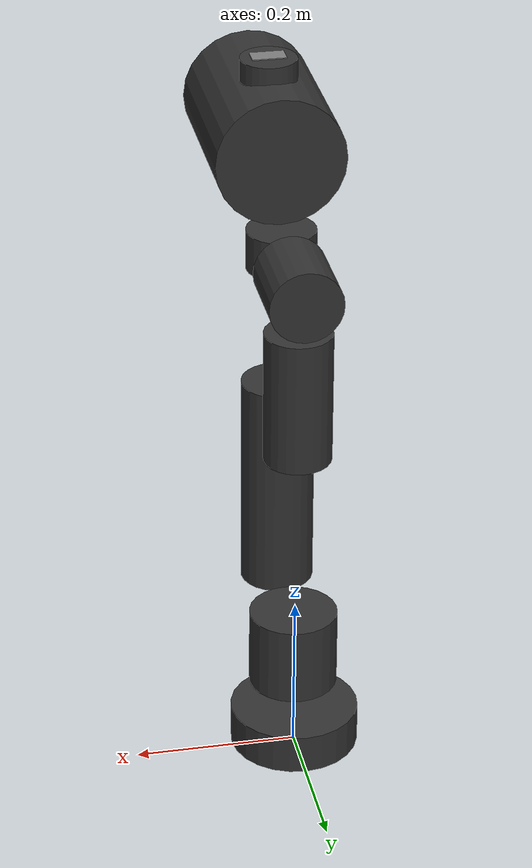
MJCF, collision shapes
<mujoco model="omy_f3m">
  <compiler angle="radian" meshdir="../../"/>
  <option cone="elliptic" impratio="10"/>
  <default>
    <default class="YM080-230-A099-RH">
      <position kp="2800" forcerange="-61.4 61.4" dampratio="1.6"/>
    </default>
    <default class="YM070-210-A099-RH">
      <position kp="1500" forcerange="-31.7 31.7" dampratio="2.1"/>
    </default>
    <default class="RH-P12-RN">
      <!-- Approximate hinge torque at the configured current limit. -->
      <position kp="50" forcerange="-3 3" dampratio="1.5"/>
    </default>
  </default>
  <asset>
    <mesh name="base_unit" content_type="model/stl" file="meshes/omy_f3m/base_unit.stl" scale="0.001 0.001 0.001"/>
    <mesh name="link1" content_type="model/stl" file="meshes/omy_f3m/link1.stl" scale="0.001 0.001 0.001"/>
    <mesh name="link2" content_type="model/stl" file="meshes/omy_f3m/link2.stl" scale="0.001 0.001 0.001"/>
    <mesh name="link3" content_type="model/stl" file="meshes/omy_f3m/link3.stl" scale="0.001 0.001 0.001"/>
    <mesh name="link4" content_type="model/stl" file="meshes/omy_f3m/link4.stl" scale="0.001 0.001 0.001"/>
    <mesh name="link5" content_type="model/stl" file="meshes/omy_f3m/link5.stl" scale="0.001 0.001 0.001"/>
    <mesh name="link6" content_type="model/stl" file="meshes/omy_f3m/link6.stl" scale="0.001 0.001 0.001"/>
    <mesh name="flange" content_type="model/stl" file="meshes/omy_f3m/flange.stl" scale="0.001 0.001 0.001"/>
    <mesh name="base" content_type="model/stl" file="meshes/rh_p12_rn_a/base.stl" scale="0.001 0.001 0.001"/>
    <mesh name="r1" content_type="model/stl" file="meshes/rh_p12_rn_a/r1.stl" scale="0.001 0.001 0.001"/>
    <mesh name="r2" content_type="model/stl" file="meshes/rh_p12_rn_a/r2.stl" scale="0.001 0.001 0.001"/>
    <mesh name="l1" content_type="model/stl" file="meshes/rh_p12_rn_a/l1.stl" scale="0.001 0.001 0.001"/>
    <mesh name="l2" content_type="model/stl" file="meshes/rh_p12_rn_a/l2.stl" scale="0.001 0.001 0.001"/>
  </asset>
  <worldbody>
    <body name="link0">
      <inertial pos="-0.00402158 0.0013084 0.0550735" quat="0.0485506 0.674996 -0.0441829 0.734895" mass="1.52875"
        diaginertia="0.00642077 0.00497955 0.00462403"/>
      <geom type="mesh" contype="0" conaffinity="0" group="2" density="0" rgba="0.2 0.2 0.2 1" mesh="base_unit"/>
      <geom size="0.08 0.025" pos="0 0 0.03" type="cylinder" rgba="0.2 0.2 0.2 1" group="3" density="0"/>
      <body name="link1" pos="0 0 0.1715">
        <inertial pos="-0.000110636 -0.00547113 -0.0158977" quat="0.98558 0.168758 -0.00294757 0.0120358" mass="2.06488"
          diaginertia="0.00303337 0.00279081 0.00221937"/>
        <joint name="joint1" pos="0 0 0" axis="0 0 1" range="-6.28319 6.28319" actuatorfrcrange="-1000 1000"
          damping="17" armature="0.3" frictionloss="5"/>
        <geom type="mesh" contype="0" conaffinity="0" group="2" density="0" rgba="0.2 0.2 0.2 1" mesh="link1"/>
        <geom size="0.055 0.05" pos="0 -0.01 -0.035" type="cylinder" rgba="0.2 0.2 0.2 1" group="3" density="0"/>
        <body name="link2" pos="0 -0.1215 0">
          <inertial pos="1.14054e-05 0.0161842 0.103606" quat="0.999988 -0.00477885 -0.000609836 0.00067321"
            mass="3.67954" diaginertia="0.051732 0.0503576 0.00449718"/>
          <joint name="joint2" pos="0 0 0" axis="0 1 0" range="-6.28319 6.28319" actuatorfrcrange="-1000 1000"
            damping="17" armature="0.3" frictionloss="5"/>
          <geom type="mesh" contype="0" conaffinity="0" group="2" density="0" rgba="0.2 0.2 0.2 1" mesh="link2"/>
          <geom size="0.046 0.14" pos="-0.005 -0.02 0.13" type="cylinder" rgba="0.2 0.2 0.2 1" group="3" density="0"/>
          <body name="link3" pos="0 0 0.247">
            <inertial pos="7.81487e-05 0.107185 0.141173" quat="0.999987 0.00500823 0.000469041 -0.00072733"
              mass="2.38659" diaginertia="0.0226944 0.021922 0.00277422"/>
            <joint name="joint3" pos="0 0 0" axis="0 1 0" range="-6.28319 6.28319" actuatorfrcrange="-1000 1000"
              damping="5" armature="0.1" frictionloss="3"/>
            <geom type="mesh" contype="0" conaffinity="0" group="2" density="0" rgba="0.2 0.2 0.2 1" mesh="link3"/>
            <geom size="0.042 0.085" pos="0 0.125 0.08" type="cylinder" rgba="0.2 0.2 0.2 1" group="3" density="0"/>
            <body name="link4" pos="0 0.1215 0.2195">
              <inertial pos="-0.000133183 -0.107467 0.0190907" quat="0.983636 0.179196 0.00338061 -0.0183488"
                mass="1.40023" diaginertia="0.00175475 0.00162284 0.00115817"/>
              <joint name="joint4" pos="0 0 0" axis="0 1 0" range="-6.28319 6.28319" actuatorfrcrange="-1000 1000"
                damping="5" armature="0.1" frictionloss="3"/>
              <geom type="mesh" contype="0" conaffinity="0" group="2" density="0" rgba="0.2 0.2 0.2 1" mesh="link4"/>
              <geom size="0.045 0.05" quat="0.707388 0.706825 0 0" type="cylinder" rgba="0.2 0.2 0.2 1" group="3"
                density="0"/>
              <body name="link5" pos="0 -0.113 0">
                <inertial pos="0.000133183 -0.0190907 0.109967" quat="0.822247 0.568825 0.0105841 -0.015365"
                  mass="1.40023" diaginertia="0.00175475 0.00162284 0.00115817"/>
                <joint name="joint5" pos="0 0 0" axis="0 0 1" range="-6.28319 6.28319" actuatorfrcrange="-1000 1000"
                  damping="5" armature="0.1" frictionloss="3"/>
                <geom type="mesh" contype="0" conaffinity="0" group="2" density="0" rgba="0.2 0.2 0.2 1" mesh="link5"/>
                <geom size="0.043 0.025" pos="0 0.01 0.005" type="cylinder" rgba="0.2 0.2 0.2 1" group="3" density="0"/>
                <body name="link6" pos="0 0 0.1155">
                  <inertial pos="1.10801e-05 -0.0805941 0.00930293" quat="0.707541 -0.0441733 0.0461929 0.703776"
                    mass="0.400155" diaginertia="0.00063691 0.000567415 0.00019166"/>
                  <joint name="joint6" pos="0 0 0" axis="0 1 0" range="-6.28319 6.28319" actuatorfrcrange="-1000 1000"
                    damping="5" armature="0.1" frictionloss="3"/>
                  <geom type="mesh" contype="0" conaffinity="0" group="2" density="0" rgba="0.2 0.2 0.2 1"
                    mesh="link6"/>
                  <geom size="0.08 0.11" pos="0 -0.1 0" quat="0.707388 0.706825 0 0" type="cylinder"
                    rgba="0.2 0.2 0.2 1" group="3" density="0"/>
                  <body name="camera_bottom_screw_frame" pos="-0.021 -0.07385 0.0803" quat="0.5 -0.5 0.5 -0.5">
                    <body name="camera_link" pos="0.01085 0.009 0.021">
                      <inertial pos="0 0 0" quat="0.707107 0.707107 0 0" mass="0.072"
                        diaginertia="0.00388124 0.00387926 0.00049894"/>
                      <geom size="0.0115 0.021 0.021" pos="0.0038 -0.009 0" quat="0.5 0.5 0.5 0.5" type="box"
                        contype="0" conaffinity="0" group="2" density="0"/>
                      <geom size="0.0115 0.021 0.021" pos="-0.0078 -0.009 0" type="box" group="3" density="0"/>
                    </body>
                  </body>
                  <body name="end_effector_flange_link" pos="0 -0.103 0">
                    <inertial pos="0 -0.00319031 0" quat="0.5 0.5 0.5 0.5" mass="0.0166188"
                      diaginertia="8.12543e-06 5.49262e-06 2.90758e-06"/>
                    <geom type="mesh" contype="0" conaffinity="0" group="2" density="0" rgba="0.2 0.2 0.2 1"
                      mesh="flange"/>
                    <geom size="0.035 0.06" pos="0 0.03 0.04" type="cylinder" rgba="0.2 0.2 0.2 1" group="3"
                      density="0"/>
                    <body name="rh_p12_rn_base" pos="0 -0.006 0" quat="0.500398 0.5 -0.5 0.499602">
                      <inertial pos="0 0 0.032" mass="0.236" diaginertia="1e-06 1e-06 1e-06"/>
                      <geom type="mesh" mesh="base" group="3" density="0"/>
                      <geom type="mesh" contype="0" conaffinity="0" group="2" density="0" rgba="0.2 0.2 0.2 1"
                        mesh="base"/>
                      <body name="rh_p12_rn_r1" pos="0 0.008 0.048">
                        <inertial pos="0 0.034 0.004" mass="0.068" diaginertia="1e-06 1e-06 1e-06"/>
                        <joint name="rh_r1_joint" pos="0 0 0" axis="1 0 0" range="0 1.13515"
                          actuatorfrcrange="-1000 1000" damping="0.7" armature="0.1" frictionloss="0.05"/>
                        <geom type="mesh" mesh="r1" group="3" density="0"/>
                        <geom type="mesh" contype="0" conaffinity="0" group="2" density="0" rgba="0.2 0.2 0.2 1"
                          mesh="r1"/>
                        <body name="rh_p12_rn_r2" pos="0 0.0493634 0.0285">
                          <inertial pos="0 0.006 0.011" mass="0.022" diaginertia="1e-06 1e-06 1e-06"/>
                          <joint name="rh_r2" pos="0 0 0" axis="-1 0 0" range="0 1.13515" actuatorfrcrange="-1000 1000"
                            damping="0.7" armature="0.1" frictionloss="0.05"/>
                          <geom type="mesh" mesh="r2" group="3" density="0"/>
                          <geom type="mesh" contype="0" conaffinity="0" group="2" density="0" rgba="0.2 0.2 0.2 1"
                            mesh="r2"/>
                        </body>
                      </body>
                      <body name="rh_p12_rn_l1" pos="0 -0.008 0.048">
                        <inertial pos="0 -0.034 0.004" mass="0.068" diaginertia="1e-06 1e-06 1e-06"/>
                        <joint name="rh_l1" pos="0 0 0" axis="-1 0 0" range="0 1.13515" actuatorfrcrange="-1000 1000"
                          damping="0.7" armature="0.1" frictionloss="0.05"/>
                        <geom type="mesh" mesh="l1" group="3" density="0"/>
                        <geom type="mesh" contype="0" conaffinity="0" group="2" density="0" rgba="0.2 0.2 0.2 1"
                          mesh="l1"/>
                        <body name="rh_p12_rn_l2" pos="0 -0.0493634 0.0285">
                          <inertial pos="0 -0.006 0.011" mass="0.022" diaginertia="1e-06 1e-06 1e-06"/>
                          <joint name="rh_l2" pos="0 0 0" axis="1 0 0" range="0 1.13515" actuatorfrcrange="-1000 1000"
                            damping="0.7" armature="0.1" frictionloss="0.05"/>
                          <geom type="mesh" mesh="l2" group="3" density="0"/>
                          <geom type="mesh" contype="0" conaffinity="0" group="2" density="0" rgba="0.2 0.2 0.2 1"
                            mesh="l2"/>
                        </body>
                      </body>
                    </body>
                    <body name="end_effector_link" pos="0 -0.141 0">
                      <geom size="0.005 0.005 0.005" type="box" contype="0" conaffinity="0" group="2" density="0"
                        rgba="1 0 0 1"/>
                    </body>
                  </body>
                </body>
              </body>
            </body>
          </body>
        </body>
      </body>
    </body>
  </worldbody>
  <actuator>
    <position name="joint1" joint="joint1" class="YM080-230-A099-RH" inheritrange="1"/>
    <position name="joint2" joint="joint2" class="YM080-230-A099-RH" inheritrange="1"/>
    <position name="joint3" joint="joint3" class="YM070-210-A099-RH" inheritrange="1"/>
    <position name="joint4" joint="joint4" class="YM070-210-A099-RH" inheritrange="1"/>
    <position name="joint5" joint="joint5" class="YM070-210-A099-RH" inheritrange="1"/>
    <position name="joint6" joint="joint6" class="YM070-210-A099-RH" inheritrange="1"/>
    <position name="rh_r1_joint" joint="rh_r1_joint" class="RH-P12-RN" inheritrange="1"/>
  </actuator>
  <contact>
    <!-- Adjacent or overlapping internal collision meshes -->
    <exclude body1="link0" body2="link1"/>
    <exclude body1="link6" body2="rh_p12_rn_r1"/>
    <exclude body1="link6" body2="rh_p12_rn_l1"/>
    <exclude body1="link6" body2="rh_p12_rn_r2"/>
    <exclude body1="link6" body2="rh_p12_rn_l2"/>
    <exclude body1="rh_p12_rn_r1" body2="rh_p12_rn_r2"/>
    <exclude body1="rh_p12_rn_l1" body2="rh_p12_rn_l2"/>
    <exclude body1="rh_p12_rn_r1" body2="rh_p12_rn_l1"/>
    <exclude body1="rh_p12_rn_r2" body2="rh_p12_rn_l2"/>
  </contact>
  <equality>
    <!-- Mimic joint constraints. -->
    <joint joint1="rh_r2" joint2="rh_r1_joint" polycoef="0 1 0 0 0"/>
    <joint joint1="rh_l1" joint2="rh_r1_joint" polycoef="0 1 0 0 0"/>
    <joint joint1="rh_l2" joint2="rh_r1_joint" polycoef="0 1 0 0 0"/>
  </equality>
  <keyframe>
    <key name="home" qpos="0 0 0 0 0 0 0 0 0 0" ctrl="0 0 0 0 0 0 0"/>
  </keyframe>
</mujoco>
